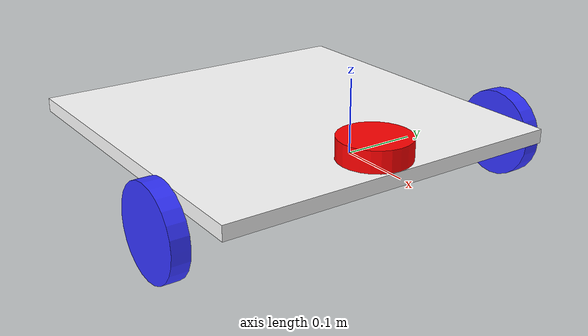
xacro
<?xml version="1.0"?>
<robot xmlns:xacro="http://www.ros.org/wiki/xacro"  name="robot">

    <xacro:include filename="robot_core.xacro" />

    <xacro:include filename="ros2_control.xacro"/>
    <xacro:include filename="lidar.xacro"/>

</robot>

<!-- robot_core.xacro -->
<robot xmlns:xacro="http://www.ros.org/wiki/xacro" >

    <xacro:include filename="inertial_macros.xacro"/>

    <material name="white">
        <color rgba="1 1 1 1" />
    </material>

    <material name="orange">
        <color rgba="1 0.3 0.1 1" />
    </material>

    <material name="blue">
        <color rgba="0.2 0.2 1 1" />
    </material>

    <material name="black">
        <color rgba="0 0 0 1" />
    </material>

    <material name="red">
        <color rgba="1 0 0 1"/>
    </material>

    <!-- BASE LINK -->

    <link name="base_link">

    </link>

    <!-- CHASSIS LINK-->

    <joint name="chassis_joint" type="fixed">
        <parent link="base_link" />
        <child link="chassis"/>
        <origin xyz="0 0 0" />
    </joint>

    <link name="chassis">
        <visual>
            <origin xyz="-0.15 0 0" />
            <geometry>
                <box size="0.5 0.5 0.02" />
            </geometry>
            <material name="white" />
        </visual>
        <collision>
            <origin xyz="-0.15 0 0.0" />
            <geometry>
                <box size="0.5 0.5 0.02" />
            </geometry>
        </collision>
        <xacro:inertial_box mass="5" x="0.5" y="0.5" z="0.2">
            <origin xyz="-0.15 0 0" rpy="0 0 0"/>
        </xacro:inertial_box>

    </link>

    <gazebo reference="chassis">
        <material>Gazebo/White</material>
    </gazebo>

    <!-- LEFT WHEEL LINK-->

    <joint name="left_wheel_joint" type="continuous">
        <parent link="base_link"/>"
        <child link="left_wheel"/>
        <origin xyz="0 0.28 -0.03" rpy="-${pi/2} 0 0"/>
        <axis xyz="0 0 1"/>
    </joint>

    <link name="left_wheel">
        <visual>
            <geometry>
                <cylinder radius="0.0625" length="0.025"/>
            </geometry>
            <material name="blue"/>
        </visual>
        <collision>
            <geometry>
                <sphere radius="0.0625"/>
            </geometry>
        </collision>
        <xacro:inertial_cylinder mass="0.1" length="0.025" radius="0.0625">
            <origin xyz="0 0 0" rpy="0 0 0"/>
        </xacro:inertial_cylinder>
    </link>

    <gazebo reference="left_wheel">
        <material>Gazebo/Blue</material>
    </gazebo>

    <!-- RIGHT WHEEL LINK-->

    <joint name="right_wheel_joint" type="continuous">
        <parent link="base_link"/>"
        <child link="right_wheel"/>
        <origin xyz="0 -0.28 -0.03" rpy="${pi/2} 0 0"/>
        <axis xyz="0 0 -1"/>
    </joint>

    <link name="right_wheel">
        <visual>
            <geometry>
                <cylinder radius="0.0625" length="0.025"/>
            </geometry>
            <material name="blue"/>
        </visual>
        <collision>
            <geometry>
                <sphere radius="0.0625"/>
            </geometry>
        </collision>
        <xacro:inertial_cylinder mass="0.1" length="0.025" radius="0.0625">
            <origin xyz="0 0 0" rpy="0 0 0"/>
        </xacro:inertial_cylinder>
    </link>

     <gazebo reference="right_wheel">
        <material>Gazebo/Blue</material>
    </gazebo>

    <!-- CASTER WHEEL LINK-->

    <joint name="caster_wheel_joint" type="fixed">
        <parent link="chassis"/>
        <child link="caster_wheel"/>
        <origin xyz="-0.36 0 -0.045" />
    </joint>

    <link name="caster_wheel">
        <visual>
            <geometry>
                <sphere radius="0.045"/>
            </geometry>
            <material name="black"/>
        </visual>
        <collision>
            <geometry>
                <sphere radius="0.045"/>
            </geometry>
        </collision>
        <xacro:inertial_sphere mass="0.1" radius="0.045">
            <origin xyz="0 0 0" rpy="0 0 0"/>
        </xacro:inertial_sphere>
    </link>

     <gazebo reference="caster_wheel">
        <material>Gazebo/Black</material>
        <mu1 value="0.001"/>
        <mu2 value="0.001"/>
    </gazebo>

</robot>

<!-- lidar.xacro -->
<robot xmlns:xacro="http://www.ros.org/wiki/xacro">

    <joint name="laser_joint" type="fixed">
        <parent link="chassis"/>
        <child link="laser_frame"/>
        <origin xyz="0.05 0 0.02" rpy="0 0 0"/>
    </joint>

    <link name="laser_frame">
        <visual>
            <geometry>
                <cylinder radius="0.05" length="0.04"/>
            </geometry>
            <material name="red"/>
        </visual>
        <collision>
            <geometry>
                <cylinder radius="0.05" length="0.04"/>
            </geometry>
        </collision>
        <xacro:inertial_cylinder mass="0.1" length="0.04" radius="0.05">
            <origin xyz="0 0 0" rpy="0 0 0"/>
        </xacro:inertial_cylinder>
    </link>

    <gazebo reference="laser_frame">
        <material>Gazebo/Red</material>

        <sensor name="laser" type="ray">
            <pose> 0 0 0 0 0 0 </pose>
            <visualize>false</visualize>
            <update_rate>10</update_rate>
            <ray>
                <scan>
                    <horizontal>
                        <samples>360</samples>
                        <resolution>1</resolution>
                        <min_angle>-3.14</min_angle>
                        <max_angle>3.14</max_angle>
                    </horizontal>
                </scan>
                <range>
                    <min>0.3</min>
                    <max>12</max>
                    <resolution>0.01</resolution>
                </range>
            </ray>
            <plugin name="laser_controller" filename="libgazebo_ros_ray_sensor.so">
                <ros>
                    <argument>~/out:=scan</argument>
                </ros>
                <output_type>sensor_msgs/LaserScan</output_type>
                <frame_name>laser_frame</frame_name>
            </plugin>
        </sensor>
    </gazebo>

</robot>
